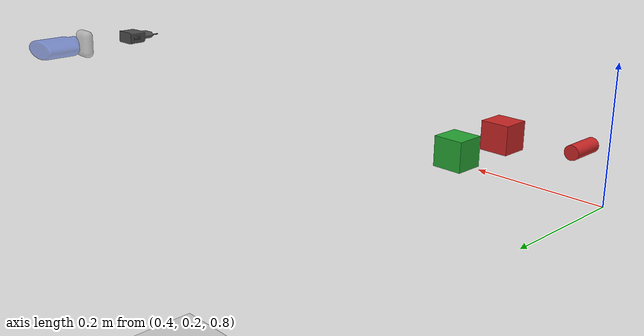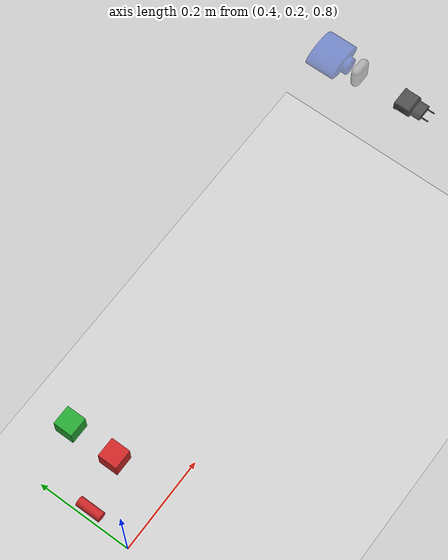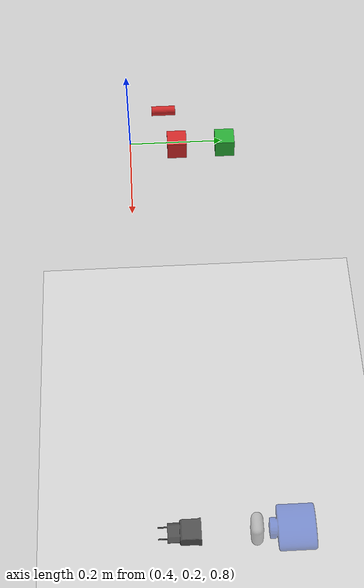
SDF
<sdf version="1.4">
 <world name="default">
  <physics type="ode">
   <gravity>0 0 -9.81</gravity>
   <ode>
    <solver><type>quick</type><iters>20</iters><sor>1.0</sor></solver>
    <constraints>
     <cfm>0.0</cfm>
     <erp>0.2</erp>
     <contact_max_correcting_vel>100.0</contact_max_correcting_vel>
     <contact_surface_layer>0.0</contact_surface_layer>
    </constraints>
   </ode>
   <real_time_update_rate>1000</real_time_update_rate>
   <max_step_size>0.001</max_step_size>
  </physics>
  <light type="directional" name="light1">
   <pose>2 0 10 0 0 0</pose>
   <diffuse>1.0 1.0 1.0 1</diffuse>
   <specular>0.1 0.1 0.1 1</specular>
   <attenuation>
    <range>20</range>
    <constant>0.9</constant>
    <linear>0.01</linear>
    <quadratic>0.001</quadratic>
   </attenuation>
   <direction>0.2 0.0 -1.0</direction>
  </light>
  <include><uri>model://ground_plane</uri></include>
  <include>
   <uri>model://xiaoyuanzhu_red</uri>
   <name>xiaoyuanzhu_red</name>
   <pose>0.4 0.3 0.9 1.57 0 0</pose>
  </include>
  <include><uri>model://MuKuai_red</uri><name>MuKuai_red</name><pose>0.5 0.3 0.9 0 0 0</pose></include>
  <include><uri>model://MuKuai_green</uri><name>MuKuai_green</name><pose>0.5 0.4 0.9 0 0 0</pose></include>
  <include><uri>model://Charger</uri><name>Charger</name><pose>1.4 0.3 0.9 1.57 0 0</pose></include>
  <include><uri>model://airpods</uri><name>airpods</name><pose>1.4 0.4 0.9 1.57 0 0</pose></include>
  <include><uri>model://InkBottle</uri><name>InkBottle</name><pose>1.4 0.5 0.9 1.57 0 0</pose></include>
 </world>
</sdf>

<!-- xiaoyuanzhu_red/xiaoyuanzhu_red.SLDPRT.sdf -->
<sdf version='1.6'>
  <model name='xiaoyuanzhu_red.SLDPRT'>
    <link name='xiaoyuanzhu_red'>
      <pose frame=''>0 0 0 0 -0 0</pose>
      <inertial>
        <pose frame=''>0 0 0.025 0 -0 0</pose>
        <mass>0.0047124</mass>
        <inertia>
          <ixx>1.0996e-06</ixx>
          <ixy>1.39397e-55</ixy>
          <ixz>-2.2766e-39</ixz>
          <iyy>1.0996e-06</iyy>
          <iyz>-5.29018e-23</iyz>
          <izz>2.3562e-07</izz>
        </inertia>
      </inertial>
      <collision name='xiaoyuanzhu_red_collision'>
        <pose frame=''>0 0 0 1.5708 -0 0</pose>
        <geometry>
          <mesh>
            <scale>1 1 1</scale>
            <uri>model://xiaoyuanzhu_red/meshes/xiaoyuanzhu_red.STL</uri>
          </mesh>
        </geometry>

	  <surface>
	    <friction>
	      <ode>
		<mu>0.5</mu>
		<mu2>0.5</mu2>
	      </ode>
	    </friction>
	    <contact>
	      <ode>
		<kp>1000000.0</kp>
		<kd>1.0</kd>
		<max_vel>1.0</max_vel>
		<min_depth>0.0025</min_depth>
	      </ode>
	    </contact>
	  </surface>

      </collision>
      <visual name='xiaoyuanzhu_red_visual'>
        <pose frame=''>0 0 0 1.5708 -0 0</pose>
        <geometry>
          <mesh>
            <scale>1 1 1</scale>
            <uri>model://xiaoyuanzhu_red/meshes/xiaoyuanzhu_red.STL</uri>
          </mesh>
        </geometry>

	<material>
          <script>
            <uri>file://media/materials/scripts/gazebo.material</uri>
	    <name>Gazebo/Red</name>
          </script>
        </material>

      </visual>

        <velocity_decay>
            <linear>0.000000</linear>
            <angular>0.000000</angular>
        </velocity_decay>
        <self_collide>0</self_collide>
        <kinematic>0</kinematic>
        <gravity>1</gravity>
    </link>
  </model>
</sdf>

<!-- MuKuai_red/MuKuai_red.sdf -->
<sdf version='1.6'>
  <model name='MuKuai_red'>
      <static>0</static>
    <link name='MuKuai_red_link'>
      <pose frame=''>0 0 0 0 -0 0</pose>
      <inertial>
        <mass>0.25</mass>
        <inertia>
          <ixx>0.000041667</ixx>
          <ixy>0</ixy>
          <ixz>0</ixz>
          <iyy>0.000041667</iyy>
          <iyz>0</iyz>
          <izz>0.000041667</izz>
        </inertia>
      </inertial>
      <collision name='MuKuai_red_collision'>
        <geometry>
            <box>
              <size>0.04 0.04 0.04</size>
            </box>
        </geometry>
	  <surface>
	    <friction>
	      <ode>
		<mu>0.5</mu>
		<mu2>0.5</mu2>
	      </ode>
	    </friction>
	    <contact>
	      <ode>
		<kp>100000.0</kp>
		<kd>1.0</kd>
		<max_vel>1.0</max_vel>
		<min_depth>0.0025</min_depth>
	      </ode>
	    </contact>
	  </surface>
      </collision>
      <visual name='MuKuai_red_visual'>
        <pose frame=''>0 0 0 1.5708 -0 0</pose>
        <geometry>
          <mesh>
            <scale>1 1 1</scale>
            <uri>model://MuKuai_red/meshes/cube_fine.STL</uri>
          </mesh>
        </geometry>
	<material>
          <script>
            <uri>file://media/materials/scripts/gazebo.material</uri>
            <name>Gazebo/Red</name>
          </script>
        </material>
      </visual>
        <velocity_decay>
            <linear>0.000000</linear>
            <angular>0.000000</angular>
        </velocity_decay>
        <self_collide>0</self_collide>
        <kinematic>0</kinematic>
        <gravity>1</gravity>
    </link>
  </model>
</sdf>

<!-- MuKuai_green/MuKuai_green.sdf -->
<sdf version='1.6'>
  <model name='MuKuai_green'>
      <static>0</static>
    <link name='MuKuai_green_link'>
      <pose frame=''>0 0 0 0 -0 0</pose>
      <inertial>
        <mass>0.25</mass>
        <inertia>
          <ixx>0.000041667</ixx>
          <ixy>0</ixy>
          <ixz>0</ixz>
          <iyy>0.000041667</iyy>
          <iyz>0</iyz>
          <izz>0.000041667</izz>
        </inertia>
      </inertial>
      <collision name='MuKuai_green_collision'>
        <geometry>
            <box>
              <size>0.04 0.04 0.04</size>
            </box>
        </geometry>
	  <surface>
	    <friction>
	      <ode>
		<mu>0.5</mu>
		<mu2>0.5</mu2>
	      </ode>
	    </friction>
	    <contact>
	      <ode>
		<kp>100000.0</kp>
		<kd>1.0</kd>
		<max_vel>1.0</max_vel>
		<min_depth>0.0025</min_depth>
	      </ode>
	    </contact>
	  </surface>
      </collision>
      <visual name='MuKuai_green_visual'>
        <pose frame=''>0 0 0 1.5708 -0 0</pose>
        <geometry>
          <mesh>
            <scale>1 1 1</scale>
            <uri>model://MuKuai_green/meshes/cube_fine.STL</uri>
          </mesh>
        </geometry>
	<material>
          <script>
            <uri>file://media/materials/scripts/gazebo.material</uri>
            <name>Gazebo/Green</name>
          </script>
        </material>
      </visual>
        <velocity_decay>
            <linear>0.000000</linear>
            <angular>0.000000</angular>
        </velocity_decay>
        <self_collide>0</self_collide>
        <kinematic>0</kinematic>
        <gravity>1</gravity>
    </link>
  </model>
</sdf>

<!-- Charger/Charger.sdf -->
<sdf version='1.6'>
  <model name='Charger'>
  <static>0</static>
    <link name='Charger'>
      <pose frame=''>0 0 0 0 -0 0</pose>
      <inertial>
        <pose frame=''>0.000859 -0 0.038027 0 -0 0</pose>
        <mass>0.31482</mass>
        <inertia>
          <ixx>0.00035006</ixx>
          <ixy>6.6114e-10</ixy>
          <ixz>4.3343e-06</ixz>
          <iyy>0.00045804</iyy>
          <iyz>-8.0855e-12</iyz>
          <izz>0.00019822</izz>
        </inertia>
      </inertial>
      <collision name='Charger_collision'>
      	  <surface>
	    <friction>
	      <ode>
		<mu>0.5</mu>
		<mu2>0.5</mu2>
	      </ode>
	    </friction>
	    <contact>
	      <ode>
		<kp>1000000.0</kp>
		<kd>1.0</kd>
		<max_vel>1.0</max_vel>
		<min_depth>0.0025</min_depth>
	      </ode>
	    </contact>
	  </surface>
        <pose frame=''>0 0 0 1.5708 -0 0</pose>
        <geometry>
           <box>
              <size>0.04 0.04 0.04</size>
            </box>
        </geometry>
      </collision>
      <visual name='Charger_visual'>
      	<material>
          <script>
            <uri>file://media/materials/scripts/gazebo.material</uri>
            <name>Gazebo/DarkGrey</name>
          </script>
        </material>
        <pose frame=''>0 0 0 1.5708 -0 0</pose>
        <geometry>
          <mesh>
            <scale>0.5 0.5 0.5</scale>
            <uri>model://Charger/meshes/Charger.STL</uri>
          </mesh>
        </geometry>
      </visual>
            <velocity_decay>
      <linear>0.000000</linear>
      <angular>0.000000</angular>
      </velocity_decay>
      <self_collide>0</self_collide>
        <kinematic>0</kinematic>
        <gravity>1</gravity>
    </link>
  </model>
</sdf>

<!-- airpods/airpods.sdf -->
<sdf version='1.6'>
  <model name='airpods'>
    <link name='airpods'>
      <pose frame=''>0 0 0 0 -0 0</pose>
      <inertial>
        <pose frame=''>0 0 0 0 -0 0</pose>
        <mass>0.05</mass>
        <inertia>
          <ixx>0</ixx>
          <ixy>0</ixy>
          <ixz>0</ixz>
          <iyy>0</iyy>
          <iyz>0</iyz>
          <izz>0</izz>
        </inertia>
      </inertial>
      <collision name='airpods_collision'>
        <pose frame=''>0 0 0 0 -0 0</pose>
        <geometry>
             <box>
              <size>0.04 0.04 0.04</size>
            </box>
        </geometry>
        <surface>
	    <friction>
	      <ode>
		<mu>0.5</mu>
		<mu2>0.5</mu2>
	      </ode>
	    </friction>
	    <contact>
	      <ode>
		<kp>1000000.0</kp>
		<kd>1.0</kd>
		<max_vel>1.0</max_vel>
		<min_depth>0.0025</min_depth>
	      </ode>
	    </contact>
	  </surface>
      </collision>
      <velocity_decay>
      <linear>0.000000</linear>
      <angular>0.000000</angular>
      </velocity_decay>
      <self_collide>0</self_collide>
      <kinematic>0</kinematic>
      <gravity>1</gravity>
      <visual name='airpods_visual'>
      <material>
          <script>
            <uri>file://media/materials/scripts/gazebo.material</uri>
            <name>Gazebo/GreyTransparent</name>
          </script>
        </material>
        <pose frame=''>0 0 0 0 -0 0</pose>
        <geometry>
          <mesh>
            <scale>1 1 1</scale>
            <uri>model://airpods/meshes/airpods.STL</uri>
          </mesh>
        </geometry>
      </visual>
    </link>
  </model>
</sdf>

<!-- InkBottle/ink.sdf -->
<sdf version='1.6'>
  <model name='ink'>
    <link name='ink'>
      <pose frame=''>0 0 0 0 -0 0</pose>
      <inertial>
        <pose frame=''>-6e-06 -1e-06 0.035989 0 -0 0</pose>
        <mass>0.42834</mass>
        <inertia>
          <ixx>0.00022681</ixx>
          <ixy>-1.9011e-08</ixy>
          <ixz>-2.1713e-08</ixz>
          <iyy>0.00037551</iyy>
          <iyz>2.3468e-09</iyz>
          <izz>0.00021887</izz>
        </inertia>
      </inertial>
      <collision name='ink'>
      	  <surface>
	    <friction>
	      <ode>
		<mu>0.5</mu>
		<mu2>0.5</mu2>
	      </ode>
	    </friction>
	    <contact>
	      <ode>
		<kp>1000000.0</kp>
		<kd>1.0</kd>
		<max_vel>1.0</max_vel>
		<min_depth>0.0025</min_depth>
	      </ode>
	    </contact>
	  </surface>
        <pose frame=''>0 0 0 1.5708 -0 0</pose>
        <geometry>
                   <box>
              <size>0.04 0.04 0.04</size>
            </box>
        </geometry>
      </collision>
              <velocity_decay>
            <linear>0.000000</linear>
            <angular>0.000000</angular>
        </velocity_decay>
        <self_collide>0</self_collide>
        <kinematic>0</kinematic>
        <gravity>1</gravity>
      <visual name='Iroshizuku Ink Bottle.SLDPRT_visual'>
            	<material>
          <script>
            <uri>file://media/materials/scripts/gazebo.material</uri>
            <name>Gazebo/BlueTransparent</name>
          </script>
        </material>
        <pose frame=''>0 0 0 1.5708 -0 0</pose>
        <geometry>
          <mesh>
            <scale>1 1 1</scale>
            <uri>model://InkBottle/meshes/Iroshizuku Ink Bottle.SLDPRT.STL</uri>
          </mesh>
        </geometry>
      </visual>
    </link>
  </model>
</sdf>
